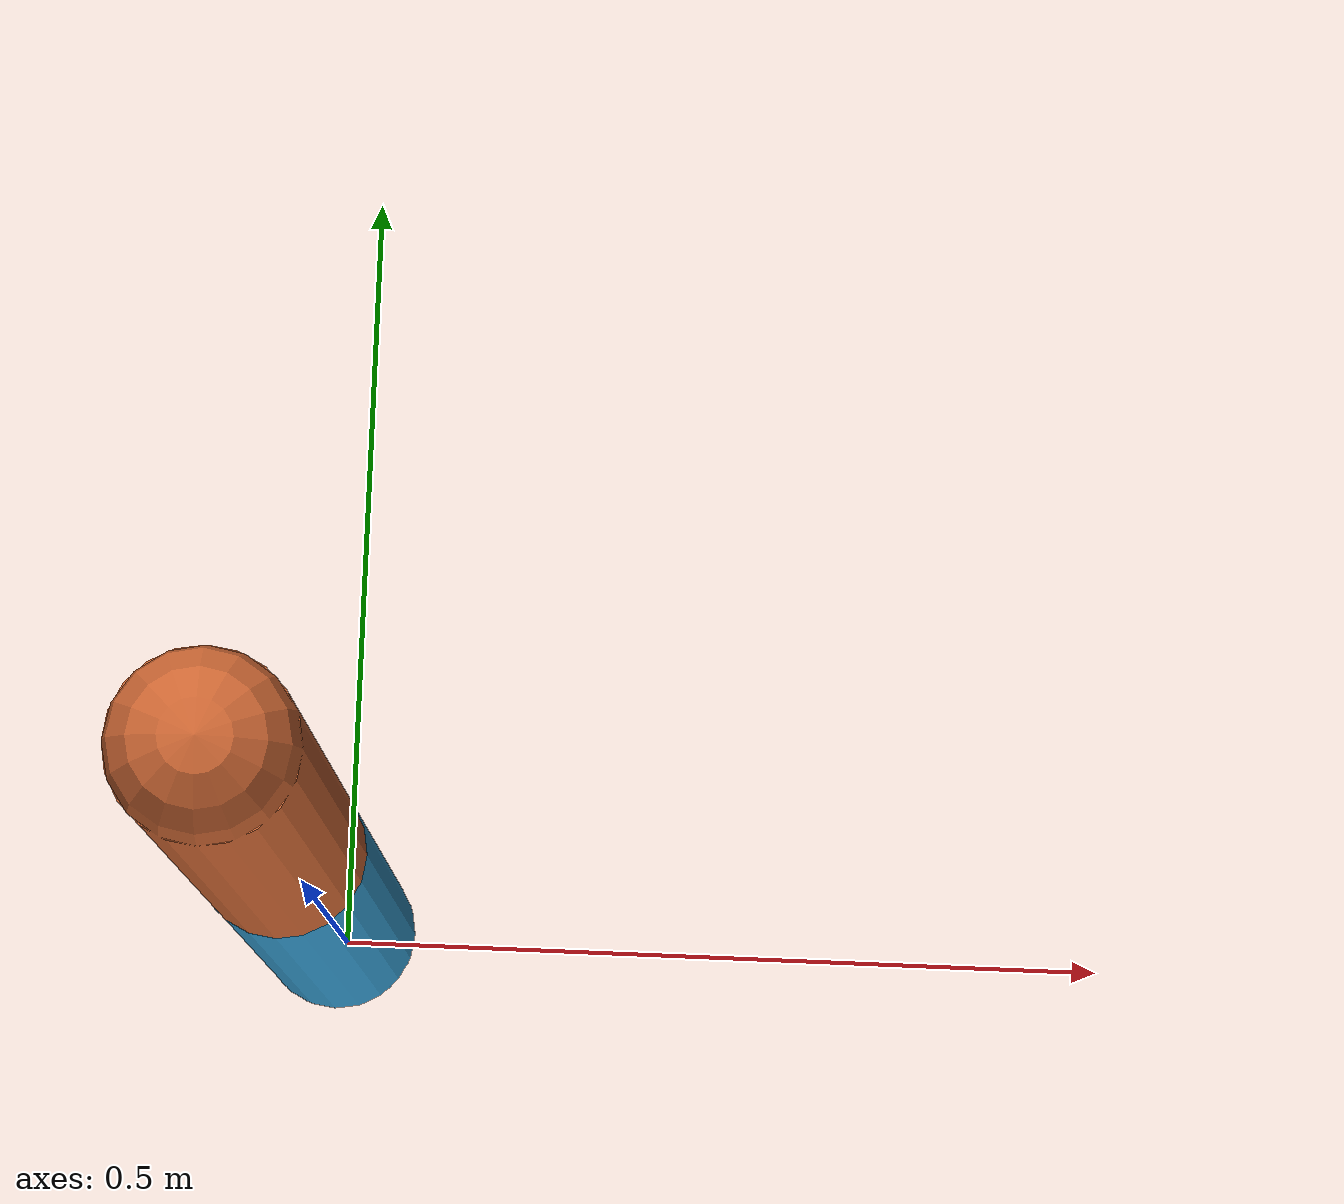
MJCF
<mujoco model="two_link_arm">
  <worldbody>
    <body name="link1" pos="0 0 0.1">
      <geom type="capsule" fromto="0 0 0 0 0 0.6" size="0.05" rgba="0.2 0.6 0.8 1"/>
      <joint name="joint1" type="hinge" axis="0 1 0" pos="0 0 0"/>

      <body name="link2" pos="0 0 0.6">
        <geom type="capsule" fromto="0 0 0 0 0 0.6" size="0.05" rgba="0.8 0.4 0.2 1"/>
        <joint name="joint2" type="hinge" axis="0 1 0" pos="0 0 0"/>
      </body>
    </body>
  </worldbody>

  <actuator>
    <position joint="joint1" ctrlrange="-1.0 1.0" gear="100"/>
    <position joint="joint2" ctrlrange="-1.0 1.0" gear="100"/>
  </actuator>

</mujoco>
